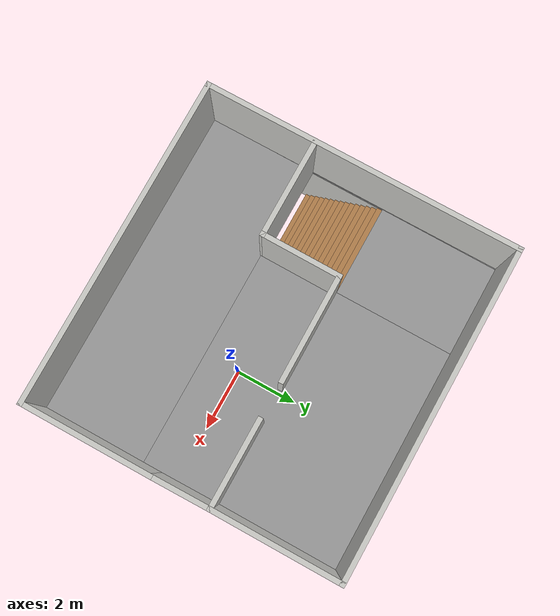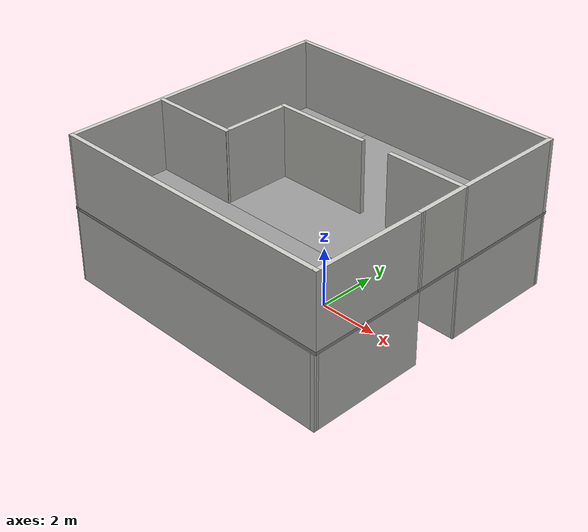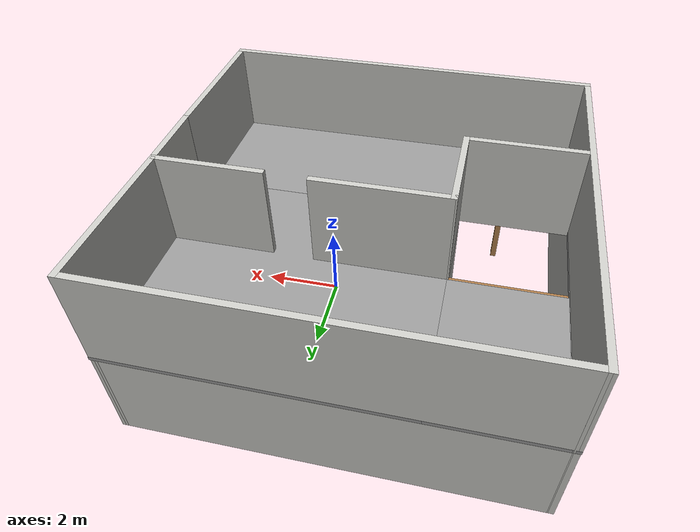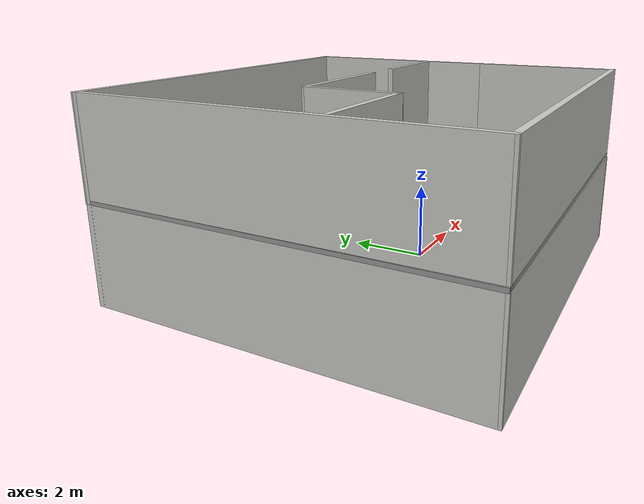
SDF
<?xml version='1.0'?>
<sdf version='1.6'>
  <model name='home_prote'>
    <pose frame=''>-1.18225 0.589115 0 0 -0 0</pose>
    <link name='Floor_1'>
      <pose frame=''>0 0.011385 2.5 0 -0 0</pose>
      <visual name='Floor_1_Visual_0'>
        <pose frame=''>-4.9287 0 0.05 0 -0 0</pose>
        <geometry>
          <box>
            <size>0.176275 9.61529 0.1</size>
          </box>
        </geometry>
        <material>
          <script>
            <uri>file://media/materials/scripts/gazebo.material</uri>
            <name>Gazebo/Grey</name>
          </script>
          <ambient>1 1 1 1</ambient>
        </material>
        <meta>
          <layer>1</layer>
        </meta>
      </visual>
      <collision name='Floor_1_Collision_0'>
        <geometry>
          <box>
            <size>0.176275 9.61529 0.1</size>
          </box>
        </geometry>
        <pose frame=''>-4.9287 0 0.05 0 -0 0</pose>
      </collision>
      <visual name='Floor_1_Visual_1'>
        <pose frame=''>0.088137 -3.14252 0.05 0 -0 0</pose>
        <geometry>
          <box>
            <size>9.85739 3.33026 0.1</size>
          </box>
        </geometry>
        <material>
          <script>
            <uri>file://media/materials/scripts/gazebo.material</uri>
            <name>Gazebo/Grey</name>
          </script>
          <ambient>1 1 1 1</ambient>
        </material>
        <meta>
          <layer>1</layer>
        </meta>
      </visual>
      <collision name='Floor_1_Collision_1'>
        <geometry>
          <box>
            <size>9.85739 3.33026 0.1</size>
          </box>
        </geometry>
        <pose frame=''>0.088137 -3.14252 0.05 0 -0 0</pose>
      </collision>
      <visual name='Floor_1_Visual_2'>
        <pose frame=''>1.49335 1.66513 0.05 0 -0 0</pose>
        <geometry>
          <box>
            <size>7.04695 6.28503 0.1</size>
          </box>
        </geometry>
        <material>
          <script>
            <uri>file://media/materials/scripts/gazebo.material</uri>
            <name>Gazebo/Grey</name>
          </script>
          <ambient>1 1 1 1</ambient>
        </material>
        <meta>
          <layer>1</layer>
        </meta>
      </visual>
      <collision name='Floor_1_Collision_2'>
        <geometry>
          <box>
            <size>7.04695 6.28503 0.1</size>
          </box>
        </geometry>
        <pose frame=''>1.49335 1.66513 0.05 0 -0 0</pose>
      </collision>
      <visual name='Floor_1_Visual_3'>
        <pose frame=''>-3.43534 2.88513 0.05 0 -0 0</pose>
        <geometry>
          <box>
            <size>2.81044 3.84504 0.1</size>
          </box>
        </geometry>
        <material>
          <script>
            <uri>file://media/materials/scripts/gazebo.material</uri>
            <name>Gazebo/Grey</name>
          </script>
          <ambient>1 1 1 1</ambient>
        </material>
        <meta>
          <layer>1</layer>
        </meta>
      </visual>
      <collision name='Floor_1_Collision_3'>
        <geometry>
          <box>
            <size>2.81044 3.84504 0.1</size>
          </box>
        </geometry>
        <pose frame=''>-3.43534 2.88513 0.05 0 -0 0</pose>
      </collision>
    </link>
    <link name='Stairs_1'>
      <visual name='Stairs_1_Visual_0'>
        <pose frame=''>-3.43534 -1.38467 0.083333 0 -0 -3.14159</pose>
        <geometry>
          <box>
            <size>2.81044 0.162667 0.166667</size>
          </box>
        </geometry>
        <material>
          <script>
            <uri>file://media/materials/scripts/gazebo.material</uri>
            <name>Gazebo/Wood</name>
          </script>
          <ambient>1 1 1 1</ambient>
        </material>
        <meta>
          <layer>0</layer>
        </meta>
      </visual>
      <collision name='Stairs_1_Collision_0'>
        <geometry>
          <box>
            <size>2.81044 0.162667 0.166667</size>
          </box>
        </geometry>
        <pose frame=''>-3.43534 -1.38467 0.083333 0 -0 -3.14159</pose>
      </collision>
      <visual name='Stairs_1_Visual_1'>
        <pose frame=''>-3.43534 -1.222 0.25 0 -0 -3.14159</pose>
        <geometry>
          <box>
            <size>2.81044 0.162667 0.166667</size>
          </box>
        </geometry>
        <material>
          <script>
            <uri>file://media/materials/scripts/gazebo.material</uri>
            <name>Gazebo/Wood</name>
          </script>
          <ambient>1 1 1 1</ambient>
        </material>
        <meta>
          <layer>0</layer>
        </meta>
      </visual>
      <collision name='Stairs_1_Collision_1'>
        <geometry>
          <box>
            <size>2.81044 0.162667 0.166667</size>
          </box>
        </geometry>
        <pose frame=''>-3.43534 -1.222 0.25 0 -0 -3.14159</pose>
      </collision>
      <visual name='Stairs_1_Visual_2'>
        <pose frame=''>-3.43534 -1.05934 0.416667 0 -0 -3.14159</pose>
        <geometry>
          <box>
            <size>2.81044 0.162667 0.166667</size>
          </box>
        </geometry>
        <material>
          <script>
            <uri>file://media/materials/scripts/gazebo.material</uri>
            <name>Gazebo/Wood</name>
          </script>
          <ambient>1 1 1 1</ambient>
        </material>
        <meta>
          <layer>0</layer>
        </meta>
      </visual>
      <collision name='Stairs_1_Collision_2'>
        <geometry>
          <box>
            <size>2.81044 0.162667 0.166667</size>
          </box>
        </geometry>
        <pose frame=''>-3.43534 -1.05934 0.416667 0 -0 -3.14159</pose>
      </collision>
      <visual name='Stairs_1_Visual_3'>
        <pose frame=''>-3.43534 -0.896671 0.583333 0 -0 -3.14159</pose>
        <geometry>
          <box>
            <size>2.81044 0.162667 0.166667</size>
          </box>
        </geometry>
        <material>
          <script>
            <uri>file://media/materials/scripts/gazebo.material</uri>
            <name>Gazebo/Wood</name>
          </script>
          <ambient>1 1 1 1</ambient>
        </material>
        <meta>
          <layer>0</layer>
        </meta>
      </visual>
      <collision name='Stairs_1_Collision_3'>
        <geometry>
          <box>
            <size>2.81044 0.162667 0.166667</size>
          </box>
        </geometry>
        <pose frame=''>-3.43534 -0.896671 0.583333 0 -0 -3.14159</pose>
      </collision>
      <visual name='Stairs_1_Visual_4'>
        <pose frame=''>-3.43534 -0.734004 0.75 0 -0 -3.14159</pose>
        <geometry>
          <box>
            <size>2.81044 0.162667 0.166667</size>
          </box>
        </geometry>
        <material>
          <script>
            <uri>file://media/materials/scripts/gazebo.material</uri>
            <name>Gazebo/Wood</name>
          </script>
          <ambient>1 1 1 1</ambient>
        </material>
        <meta>
          <layer>0</layer>
        </meta>
      </visual>
      <collision name='Stairs_1_Collision_4'>
        <geometry>
          <box>
            <size>2.81044 0.162667 0.166667</size>
          </box>
        </geometry>
        <pose frame=''>-3.43534 -0.734004 0.75 0 -0 -3.14159</pose>
      </collision>
      <visual name='Stairs_1_Visual_5'>
        <pose frame=''>-3.43534 -0.571338 0.916667 0 -0 -3.14159</pose>
        <geometry>
          <box>
            <size>2.81044 0.162667 0.166667</size>
          </box>
        </geometry>
        <material>
          <script>
            <uri>file://media/materials/scripts/gazebo.material</uri>
            <name>Gazebo/Wood</name>
          </script>
          <ambient>1 1 1 1</ambient>
        </material>
        <meta>
          <layer>0</layer>
        </meta>
      </visual>
      <collision name='Stairs_1_Collision_5'>
        <geometry>
          <box>
            <size>2.81044 0.162667 0.166667</size>
          </box>
        </geometry>
        <pose frame=''>-3.43534 -0.571338 0.916667 0 -0 -3.14159</pose>
      </collision>
      <visual name='Stairs_1_Visual_6'>
        <pose frame=''>-3.43534 -0.408671 1.08333 0 -0 -3.14159</pose>
        <geometry>
          <box>
            <size>2.81044 0.162667 0.166667</size>
          </box>
        </geometry>
        <material>
          <script>
            <uri>file://media/materials/scripts/gazebo.material</uri>
            <name>Gazebo/Wood</name>
          </script>
          <ambient>1 1 1 1</ambient>
        </material>
        <meta>
          <layer>0</layer>
        </meta>
      </visual>
      <collision name='Stairs_1_Collision_6'>
        <geometry>
          <box>
            <size>2.81044 0.162667 0.166667</size>
          </box>
        </geometry>
        <pose frame=''>-3.43534 -0.408671 1.08333 0 -0 -3.14159</pose>
      </collision>
      <visual name='Stairs_1_Visual_7'>
        <pose frame=''>-3.43534 -0.246004 1.25 0 -0 -3.14159</pose>
        <geometry>
          <box>
            <size>2.81044 0.162667 0.166667</size>
          </box>
        </geometry>
        <material>
          <script>
            <uri>file://media/materials/scripts/gazebo.material</uri>
            <name>Gazebo/Wood</name>
          </script>
          <ambient>1 1 1 1</ambient>
        </material>
        <meta>
          <layer>0</layer>
        </meta>
      </visual>
      <collision name='Stairs_1_Collision_7'>
        <geometry>
          <box>
            <size>2.81044 0.162667 0.166667</size>
          </box>
        </geometry>
        <pose frame=''>-3.43534 -0.246004 1.25 0 -0 -3.14159</pose>
      </collision>
      <visual name='Stairs_1_Visual_8'>
        <pose frame=''>-3.43534 -0.083338 1.41667 0 -0 -3.14159</pose>
        <geometry>
          <box>
            <size>2.81044 0.162667 0.166667</size>
          </box>
        </geometry>
        <material>
          <script>
            <uri>file://media/materials/scripts/gazebo.material</uri>
            <name>Gazebo/Wood</name>
          </script>
          <ambient>1 1 1 1</ambient>
        </material>
        <meta>
          <layer>0</layer>
        </meta>
      </visual>
      <collision name='Stairs_1_Collision_8'>
        <geometry>
          <box>
            <size>2.81044 0.162667 0.166667</size>
          </box>
        </geometry>
        <pose frame=''>-3.43534 -0.083338 1.41667 0 -0 -3.14159</pose>
      </collision>
      <visual name='Stairs_1_Visual_9'>
        <pose frame=''>-3.43534 0.079329 1.58333 0 -0 -3.14159</pose>
        <geometry>
          <box>
            <size>2.81044 0.162667 0.166667</size>
          </box>
        </geometry>
        <material>
          <script>
            <uri>file://media/materials/scripts/gazebo.material</uri>
            <name>Gazebo/Wood</name>
          </script>
          <ambient>1 1 1 1</ambient>
        </material>
        <meta>
          <layer>0</layer>
        </meta>
      </visual>
      <collision name='Stairs_1_Collision_9'>
        <geometry>
          <box>
            <size>2.81044 0.162667 0.166667</size>
          </box>
        </geometry>
        <pose frame=''>-3.43534 0.079329 1.58333 0 -0 -3.14159</pose>
      </collision>
      <visual name='Stairs_1_Visual_10'>
        <pose frame=''>-3.43534 0.241996 1.75 0 -0 -3.14159</pose>
        <geometry>
          <box>
            <size>2.81044 0.162667 0.166667</size>
          </box>
        </geometry>
        <material>
          <script>
            <uri>file://media/materials/scripts/gazebo.material</uri>
            <name>Gazebo/Wood</name>
          </script>
          <ambient>1 1 1 1</ambient>
        </material>
        <meta>
          <layer>0</layer>
        </meta>
      </visual>
      <collision name='Stairs_1_Collision_10'>
        <geometry>
          <box>
            <size>2.81044 0.162667 0.166667</size>
          </box>
        </geometry>
        <pose frame=''>-3.43534 0.241996 1.75 0 -0 -3.14159</pose>
      </collision>
      <visual name='Stairs_1_Visual_11'>
        <pose frame=''>-3.43534 0.404662 1.91667 0 -0 -3.14159</pose>
        <geometry>
          <box>
            <size>2.81044 0.162667 0.166667</size>
          </box>
        </geometry>
        <material>
          <script>
            <uri>file://media/materials/scripts/gazebo.material</uri>
            <name>Gazebo/Wood</name>
          </script>
          <ambient>1 1 1 1</ambient>
        </material>
        <meta>
          <layer>0</layer>
        </meta>
      </visual>
      <collision name='Stairs_1_Collision_11'>
        <geometry>
          <box>
            <size>2.81044 0.162667 0.166667</size>
          </box>
        </geometry>
        <pose frame=''>-3.43534 0.404662 1.91667 0 -0 -3.14159</pose>
      </collision>
      <visual name='Stairs_1_Visual_12'>
        <pose frame=''>-3.43534 0.567329 2.08333 0 -0 -3.14159</pose>
        <geometry>
          <box>
            <size>2.81044 0.162667 0.166667</size>
          </box>
        </geometry>
        <material>
          <script>
            <uri>file://media/materials/scripts/gazebo.material</uri>
            <name>Gazebo/Wood</name>
          </script>
          <ambient>1 1 1 1</ambient>
        </material>
        <meta>
          <layer>0</layer>
        </meta>
      </visual>
      <collision name='Stairs_1_Collision_12'>
        <geometry>
          <box>
            <size>2.81044 0.162667 0.166667</size>
          </box>
        </geometry>
        <pose frame=''>-3.43534 0.567329 2.08333 0 -0 -3.14159</pose>
      </collision>
      <visual name='Stairs_1_Visual_13'>
        <pose frame=''>-3.43534 0.729996 2.25 0 -0 -3.14159</pose>
        <geometry>
          <box>
            <size>2.81044 0.162667 0.166667</size>
          </box>
        </geometry>
        <material>
          <script>
            <uri>file://media/materials/scripts/gazebo.material</uri>
            <name>Gazebo/Wood</name>
          </script>
          <ambient>1 1 1 1</ambient>
        </material>
        <meta>
          <layer>0</layer>
        </meta>
      </visual>
      <collision name='Stairs_1_Collision_13'>
        <geometry>
          <box>
            <size>2.81044 0.162667 0.166667</size>
          </box>
        </geometry>
        <pose frame=''>-3.43534 0.729996 2.25 0 -0 -3.14159</pose>
      </collision>
      <visual name='Stairs_1_Visual_14'>
        <pose frame=''>-3.43534 0.892662 2.41667 0 -0 -3.14159</pose>
        <geometry>
          <box>
            <size>2.81044 0.162667 0.166667</size>
          </box>
        </geometry>
        <material>
          <script>
            <uri>file://media/materials/scripts/gazebo.material</uri>
            <name>Gazebo/Wood</name>
          </script>
          <ambient>1 1 1 1</ambient>
        </material>
        <meta>
          <layer>0</layer>
        </meta>
      </visual>
      <collision name='Stairs_1_Collision_14'>
        <geometry>
          <box>
            <size>2.81044 0.162667 0.166667</size>
          </box>
        </geometry>
        <pose frame=''>-3.43534 0.892662 2.41667 0 -0 -3.14159</pose>
      </collision>
    </link>
    <link name='Wall_12'>
      <collision name='Wall_12_Collision'>
        <geometry>
          <box>
            <size>9.96903 0.15 2.5</size>
          </box>
        </geometry>
        <pose frame=''>0 0 1.25 0 -0 0</pose>
      </collision>
      <visual name='Wall_12_Visual'>
        <pose frame=''>0 0 1.25 0 -0 0</pose>
        <geometry>
          <box>
            <size>9.96903 0.15 2.5</size>
          </box>
        </geometry>
        <material>
          <script>
            <uri>file://media/materials/scripts/gazebo.material</uri>
            <name>Gazebo/CeilingTiled</name>
          </script>
          <ambient>1 1 1 1</ambient>
        </material>
        <meta>
          <layer>0</layer>
        </meta>
      </visual>
      <pose frame=''>-0.00225 -4.73262 0 0 -0 3.13925</pose>
    </link>
    <link name='Wall_13'>
      <collision name='Wall_13_Collision'>
        <geometry>
          <box>
            <size>9.61486 0.15 2.5</size>
          </box>
        </geometry>
        <pose frame=''>0 0 1.25 0 -0 0</pose>
      </collision>
      <visual name='Wall_13_Visual'>
        <pose frame=''>0 0 1.25 0 -0 0</pose>
        <geometry>
          <box>
            <size>9.61486 0.15 2.5</size>
          </box>
        </geometry>
        <material>
          <script>
            <uri>file://media/materials/scripts/gazebo.material</uri>
            <name>Gazebo/CeilingTiled</name>
          </script>
          <ambient>1 1 1 1</ambient>
        </material>
        <meta>
          <layer>0</layer>
        </meta>
      </visual>
      <pose frame=''>-4.91925 0.011385 0 0 -0 1.57238</pose>
    </link>
    <link name='Wall_14'>
      <collision name='Wall_14_Collision'>
        <geometry>
          <box>
            <size>9.97677 0.15 2.5</size>
          </box>
        </geometry>
        <pose frame=''>0 0 1.25 0 -0 0</pose>
      </collision>
      <visual name='Wall_14_Visual'>
        <pose frame=''>0 0 1.25 0 -0 0</pose>
        <geometry>
          <box>
            <size>9.97677 0.15 2.5</size>
          </box>
        </geometry>
        <material>
          <script>
            <uri>file://media/materials/scripts/gazebo.material</uri>
            <name>Gazebo/CeilingTiled</name>
          </script>
          <ambient>1 1 1 1</ambient>
        </material>
        <meta>
          <layer>0</layer>
        </meta>
      </visual>
      <pose frame=''>-0.01325 4.74389 0 0 -0 0</pose>
    </link>
    <link name='Wall_15'>
      <collision name='Wall_15_Collision'>
        <geometry>
          <box>
            <size>4 0.15 2.5</size>
          </box>
        </geometry>
        <pose frame=''>0 0 1.25 0 -0 0</pose>
      </collision>
      <visual name='Wall_15_Visual'>
        <pose frame=''>0 0 1.25 0 -0 0</pose>
        <geometry>
          <box>
            <size>4 0.15 2.5</size>
          </box>
        </geometry>
        <material>
          <script>
            <uri>file://media/materials/scripts/gazebo.material</uri>
            <name>Gazebo/CeilingTiled</name>
          </script>
          <ambient>1 1 1 1</ambient>
        </material>
        <meta>
          <layer>0</layer>
        </meta>
      </visual>
      <pose frame=''>4.88875 2.81888 0 0 -0 -1.57677</pose>
    </link>
    <link name='Wall_17'>
      <collision name='Wall_17_Collision'>
        <geometry>
          <box>
            <size>4.00037 0.15 2.5</size>
          </box>
        </geometry>
        <pose frame=''>0 0 1.25 0 -0 0</pose>
      </collision>
      <visual name='Wall_17_Visual'>
        <pose frame=''>0 0 1.25 0 -0 0</pose>
        <geometry>
          <box>
            <size>4.00037 0.15 2.5</size>
          </box>
        </geometry>
        <material>
          <script>
            <uri>file://media/materials/scripts/gazebo.material</uri>
            <name>Gazebo/CeilingTiled</name>
          </script>
          <ambient>1 1 1 1</ambient>
        </material>
        <meta>
          <layer>0</layer>
        </meta>
      </visual>
      <pose frame=''>4.90725 -2.81912 0 0 -0 1.5708</pose>
    </link>
    <link name='Wall_19'>
      <collision name='Wall_19_Collision'>
        <geometry>
          <box>
            <size>2.46587 0.15 2.5</size>
          </box>
        </geometry>
        <pose frame=''>0 0 1.25 0 -0 0</pose>
      </collision>
      <visual name='Wall_19_Visual'>
        <pose frame=''>0 0 1.25 0 -0 0</pose>
        <geometry>
          <box>
            <size>2.46587 0.15 2.5</size>
          </box>
        </geometry>
        <material>
          <script>
            <uri>file://media/materials/scripts/gazebo.material</uri>
            <name>Gazebo/CeilingTiled</name>
          </script>
          <ambient>1 1 1 1</ambient>
        </material>
        <meta>
          <layer>0</layer>
        </meta>
      </visual>
      <pose frame=''>-2.00025 -0.257115 0 0 -0 1.57123</pose>
    </link>
    <link name='Wall_20'>
      <collision name='Wall_20_Collision'>
        <geometry>
          <box>
            <size>3 0.15 2.5</size>
          </box>
        </geometry>
        <pose frame=''>0 0 1.25 0 -0 0</pose>
      </collision>
      <visual name='Wall_20_Visual'>
        <pose frame=''>0 0 1.25 0 -0 0</pose>
        <geometry>
          <box>
            <size>3 0.15 2.5</size>
          </box>
        </geometry>
        <material>
          <script>
            <uri>file://media/materials/scripts/gazebo.material</uri>
            <name>Gazebo/CeilingTiled</name>
          </script>
          <ambient>1 1 1 1</ambient>
        </material>
        <meta>
          <layer>0</layer>
        </meta>
      </visual>
      <pose frame=''>-3.42575 0.894885 0 0 -0 -3.13738</pose>
    </link>
    <link name='Wall_23'>
      <collision name='Wall_23_Collision'>
        <geometry>
          <box>
            <size>0.25 0.15 2.5</size>
          </box>
        </geometry>
        <pose frame=''>0 0 1.25 0 -0 0</pose>
      </collision>
      <visual name='Wall_23_Visual'>
        <pose frame=''>0 0 1.25 0 -0 0</pose>
        <geometry>
          <box>
            <size>0.25 0.15 2.5</size>
          </box>
        </geometry>
        <material>
          <script>
            <uri>file://media/materials/scripts/gazebo.material</uri>
            <name>Gazebo/Wood</name>
          </script>
          <ambient>1 1 1 1</ambient>
        </material>
        <meta>
          <layer>0</layer>
        </meta>
      </visual>
      <pose frame=''>-3.17175 -3.01912 0 0 -0 -1.5708</pose>
    </link>
    <link name='Wall_26'>
      <collision name='Wall_26_Collision'>
        <geometry>
          <box>
            <size>0.3 0.15 2.5</size>
          </box>
        </geometry>
        <pose frame=''>0 0 1.25 0 -0 0</pose>
      </collision>
      <visual name='Wall_26_Visual'>
        <pose frame=''>0 0 1.25 0 -0 0</pose>
        <geometry>
          <box>
            <size>0.3 0.15 2.5</size>
          </box>
        </geometry>
        <material>
          <script>
            <uri>file://media/materials/scripts/gazebo.material</uri>
            <name>Gazebo/Wood</name>
          </script>
          <ambient>1 1 1 1</ambient>
        </material>
        <meta>
          <layer>0</layer>
        </meta>
      </visual>
      <pose frame=''>-1.64575 -3.72912 0 0 -0 1.5708</pose>
    </link>
    <link name='Wall_28'>
      <collision name='Wall_28_Collision'>
        <geometry>
          <box>
            <size>0.25 0.15 2.5</size>
          </box>
        </geometry>
        <pose frame=''>0 0 1.25 0 -0 0</pose>
      </collision>
      <visual name='Wall_28_Visual'>
        <pose frame=''>0 0 1.25 0 -0 0</pose>
        <geometry>
          <box>
            <size>0.25 0.15 2.5</size>
          </box>
        </geometry>
        <material>
          <script>
            <uri>file://media/materials/scripts/gazebo.material</uri>
            <name>Gazebo/Wood</name>
          </script>
          <ambient>1 1 1 1</ambient>
        </material>
        <meta>
          <layer>0</layer>
        </meta>
      </visual>
      <pose frame=''>-0.59675 -2.35512 0 0 -0 -1.5708</pose>
    </link>
    <link name='Wall_30'>
      <collision name='Wall_30_Collision'>
        <geometry>
          <box>
            <size>0.25 0.15 2.5</size>
          </box>
        </geometry>
        <pose frame=''>0 0 1.25 0 -0 0</pose>
      </collision>
      <visual name='Wall_30_Visual'>
        <pose frame=''>0 0 1.25 0 -0 0</pose>
        <geometry>
          <box>
            <size>0.25 0.15 2.5</size>
          </box>
        </geometry>
        <material>
          <script>
            <uri>file://media/materials/scripts/gazebo.material</uri>
            <name>Gazebo/Wood</name>
          </script>
          <ambient>1 1 1 1</ambient>
        </material>
        <meta>
          <layer>0</layer>
        </meta>
      </visual>
      <pose frame=''>0.74225 -3.01912 0 0 -0 -1.5708</pose>
    </link>
    <link name='Wall_33'>
      <collision name='Wall_33_Collision'>
        <geometry>
          <box>
            <size>0.25 0.15 2.5</size>
          </box>
        </geometry>
        <pose frame=''>0 0 1.25 0 -0 0</pose>
      </collision>
      <visual name='Wall_33_Visual'>
        <pose frame=''>0 0 1.25 0 -0 0</pose>
        <geometry>
          <box>
            <size>0.25 0.15 2.5</size>
          </box>
        </geometry>
        <material>
          <script>
            <uri>file://media/materials/scripts/gazebo.material</uri>
            <name>Gazebo/Wood</name>
          </script>
          <ambient>1 1 1 1</ambient>
        </material>
        <meta>
          <layer>0</layer>
        </meta>
      </visual>
      <pose frame=''>3.07725 -3.73511 0 0 -0 -1.5708</pose>
    </link>
    <link name='Wall_36'>
      <collision name='Wall_36_Collision'>
        <geometry>
          <box>
            <size>0.25 0.15 2.5</size>
          </box>
        </geometry>
        <pose frame=''>0 0 1.25 0 -0 0</pose>
      </collision>
      <visual name='Wall_36_Visual'>
        <pose frame=''>0 0 1.25 0 -0 0</pose>
        <geometry>
          <box>
            <size>0.25 0.15 2.5</size>
          </box>
        </geometry>
        <material>
          <script>
            <uri>file://media/materials/scripts/gazebo.material</uri>
            <name>Gazebo/Wood</name>
          </script>
          <ambient>1 1 1 1</ambient>
        </material>
        <meta>
          <layer>0</layer>
        </meta>
      </visual>
      <pose frame=''>2.37425 -1.70511 0 0 -0 -1.5708</pose>
    </link>
    <link name='Wall_39'>
      <collision name='Wall_39_Collision'>
        <geometry>
          <box>
            <size>3.31636 0.15 2.5</size>
          </box>
        </geometry>
        <pose frame=''>0 0 1.25 0 -0 0</pose>
      </collision>
      <visual name='Wall_39_Visual'>
        <pose frame=''>0 0 1.25 0 -0 0</pose>
        <geometry>
          <box>
            <size>3.31636 0.15 2.5</size>
          </box>
        </geometry>
        <material>
          <script>
            <uri>file://media/materials/scripts/gazebo.material</uri>
            <name>Gazebo/CeilingTiled</name>
          </script>
          <ambient>1 1 1 1</ambient>
        </material>
        <meta>
          <layer>0</layer>
        </meta>
      </visual>
      <pose frame=''>-0.41775 0.907385 0 0 -0 0.004106</pose>
    </link>
    <link name='Wall_41'>
      <collision name='Wall_41_Collision'>
        <geometry>
          <box>
            <size>2.70371 0.15 2.5</size>
          </box>
        </geometry>
        <pose frame=''>0 0 1.25 0 -0 0</pose>
      </collision>
      <visual name='Wall_41_Visual'>
        <pose frame=''>0 0 1.25 0 -0 0</pose>
        <geometry>
          <box>
            <size>2.70371 0.15 2.5</size>
          </box>
        </geometry>
        <material>
          <script>
            <uri>file://media/materials/scripts/gazebo.material</uri>
            <name>Gazebo/CeilingTiled</name>
          </script>
          <ambient>1 1 1 1</ambient>
        </material>
        <meta>
          <layer>0</layer>
        </meta>
      </visual>
      <pose frame=''>3.60025 0.893885 0 0 -0 3.14159</pose>
    </link>
    <link name='Wall_62'>
      <collision name='Wall_62_Collision'>
        <geometry>
          <box>
            <size>10 0.15 2.5</size>
          </box>
        </geometry>
        <pose frame=''>0 0 1.25 0 -0 0</pose>
      </collision>
      <visual name='Wall_62_Visual'>
        <pose frame=''>0 0 1.25 0 -0 0</pose>
        <geometry>
          <box>
            <size>10 0.15 2.5</size>
          </box>
        </geometry>
        <material>
          <script>
            <uri>file://media/materials/scripts/gazebo.material</uri>
            <name>Gazebo/CeilingTiled</name>
          </script>
          <ambient>1 1 1 1</ambient>
        </material>
        <meta>
          <layer>1</layer>
        </meta>
      </visual>
      <pose frame=''>0.01625 -4.72112 2.5 0 -0 3.14159</pose>
    </link>
    <link name='Wall_63'>
      <collision name='Wall_63_Collision'>
        <geometry>
          <box>
            <size>9.61506 0.15 2.5</size>
          </box>
        </geometry>
        <pose frame=''>0 0 1.25 0 -0 0</pose>
      </collision>
      <visual name='Wall_63_Visual'>
        <pose frame=''>0 0 1.25 0 -0 0</pose>
        <geometry>
          <box>
            <size>9.61506 0.15 2.5</size>
          </box>
        </geometry>
        <material>
          <script>
            <uri>file://media/materials/scripts/gazebo.material</uri>
            <name>Gazebo/CeilingTiled</name>
          </script>
          <ambient>1 1 1 1</ambient>
        </material>
        <meta>
          <layer>1</layer>
        </meta>
      </visual>
      <pose frame=''>-4.92525 0.011385 2.5 0 -0 1.57428</pose>
    </link>
    <link name='Wall_64'>
      <collision name='Wall_64_Collision'>
        <geometry>
          <box>
            <size>10.0152 0.15 2.5</size>
          </box>
        </geometry>
        <pose frame=''>0 0 1.25 0 -0 0</pose>
      </collision>
      <visual name='Wall_64_Visual'>
        <pose frame=''>0 0 1.25 0 -0 0</pose>
        <geometry>
          <box>
            <size>10.0152 0.15 2.5</size>
          </box>
        </geometry>
        <material>
          <script>
            <uri>file://media/materials/scripts/gazebo.material</uri>
            <name>Gazebo/CeilingTiled</name>
          </script>
          <ambient>1 1 1 1</ambient>
        </material>
        <meta>
          <layer>1</layer>
        </meta>
      </visual>
      <pose frame=''>-0.00925 4.74389 2.5 0 -0 0</pose>
    </link>
    <link name='Wall_65'>
      <collision name='Wall_65_Collision'>
        <geometry>
          <box>
            <size>4 0.15 2.5</size>
          </box>
        </geometry>
        <pose frame=''>0 0 1.25 0 -0 0</pose>
      </collision>
      <visual name='Wall_65_Visual'>
        <pose frame=''>0 0 1.25 0 -0 0</pose>
        <geometry>
          <box>
            <size>4 0.15 2.5</size>
          </box>
        </geometry>
        <material>
          <script>
            <uri>file://media/materials/scripts/gazebo.material</uri>
            <name>Gazebo/CeilingTiled</name>
          </script>
          <ambient>1 1 1 1</ambient>
        </material>
        <meta>
          <layer>1</layer>
        </meta>
      </visual>
      <pose frame=''>4.92325 2.81888 2.5 0 -0 -1.5708</pose>
    </link>
    <link name='Wall_66'>
      <collision name='Wall_66_Collision'>
        <geometry>
          <box>
            <size>4 0.15 2.5</size>
          </box>
        </geometry>
        <pose frame=''>0 0 1.25 0 -0 0</pose>
      </collision>
      <visual name='Wall_66_Visual'>
        <pose frame=''>0 0 1.25 0 -0 0</pose>
        <geometry>
          <box>
            <size>4 0.15 2.5</size>
          </box>
        </geometry>
        <material>
          <script>
            <uri>file://media/materials/scripts/gazebo.material</uri>
            <name>Gazebo/CeilingTiled</name>
          </script>
          <ambient>1 1 1 1</ambient>
        </material>
        <meta>
          <layer>1</layer>
        </meta>
      </visual>
      <pose frame=''>4.94125 -2.79611 2.5 0 -0 1.5708</pose>
    </link>
    <link name='Wall_67'>
      <collision name='Wall_67_Collision'>
        <geometry>
          <box>
            <size>2.46548 0.15 2.5</size>
          </box>
        </geometry>
        <pose frame=''>0 0 1.25 0 -0 0</pose>
      </collision>
      <visual name='Wall_67_Visual'>
        <pose frame=''>0 0 1.25 0 -0 0</pose>
        <geometry>
          <box>
            <size>2.46548 0.15 2.5</size>
          </box>
        </geometry>
        <material>
          <script>
            <uri>file://media/materials/scripts/gazebo.material</uri>
            <name>Gazebo/CeilingTiled</name>
          </script>
          <ambient>1 1 1 1</ambient>
        </material>
        <meta>
          <layer>1</layer>
        </meta>
      </visual>
      <pose frame=''>-1.99475 -0.257115 2.5 0 -0 1.56648</pose>
    </link>
    <link name='Wall_75'>
      <collision name='Wall_75_Collision'>
        <geometry>
          <box>
            <size>3.30476 0.15 2.5</size>
          </box>
        </geometry>
        <pose frame=''>0 0 1.25 0 -0 0</pose>
      </collision>
      <visual name='Wall_75_Visual'>
        <pose frame=''>0 0 1.25 0 -0 0</pose>
        <geometry>
          <box>
            <size>3.30476 0.15 2.5</size>
          </box>
        </geometry>
        <material>
          <script>
            <uri>file://media/materials/scripts/gazebo.material</uri>
            <name>Gazebo/CeilingTiled</name>
          </script>
          <ambient>1 1 1 1</ambient>
        </material>
        <meta>
          <layer>1</layer>
        </meta>
      </visual>
      <pose frame=''>-0.41225 0.907385 2.5 0 -0 0.00412</pose>
    </link>
    <link name='Wall_76'>
      <collision name='Wall_76_Collision'>
        <geometry>
          <box>
            <size>2.75 0.15 2.5</size>
          </box>
        </geometry>
        <pose frame=''>0 0 1.25 0 -0 0</pose>
      </collision>
      <visual name='Wall_76_Visual'>
        <pose frame=''>0 0 1.25 0 -0 0</pose>
        <geometry>
          <box>
            <size>2.75 0.15 2.5</size>
          </box>
        </geometry>
        <material>
          <script>
            <uri>file://media/materials/scripts/gazebo.material</uri>
            <name>Gazebo/CeilingTiled</name>
          </script>
          <ambient>1 1 1 1</ambient>
        </material>
        <meta>
          <layer>1</layer>
        </meta>
      </visual>
      <pose frame=''>3.62325 0.893885 2.5 0 -0 3.14159</pose>
    </link>
    <link name='Wall_77'>
      <collision name='Wall_77_Collision'>
        <geometry>
          <box>
            <size>3 0.15 2.5</size>
          </box>
        </geometry>
        <pose frame=''>0 0 1.25 0 -0 0</pose>
      </collision>
      <visual name='Wall_77_Visual'>
        <pose frame=''>0 0 1.25 0 -0 0</pose>
        <geometry>
          <box>
            <size>3 0.15 2.5</size>
          </box>
        </geometry>
        <material>
          <script>
            <uri>file://media/materials/scripts/gazebo.material</uri>
            <name>Gazebo/CeilingTiled</name>
          </script>
          <ambient>1 1 1 1</ambient>
        </material>
        <meta>
          <layer>1</layer>
        </meta>
      </visual>
      <pose frame=''>-3.42475 -1.41511 2.5 0 -0 3.14159</pose>
    </link>
    <link name='Wall_79'>
      <collision name='Wall_79_Collision'>
        <geometry>
          <box>
            <size>1.91509 0.15 2.5</size>
          </box>
        </geometry>
        <pose frame=''>0 0 1.25 0 -0 0</pose>
      </collision>
      <visual name='Wall_79_Visual'>
        <pose frame=''>0 0 1.25 0 -0 0</pose>
        <geometry>
          <box>
            <size>1.91509 0.15 2.5</size>
          </box>
        </geometry>
        <material>
          <script>
            <uri>file://media/materials/scripts/gazebo.material</uri>
            <name>Gazebo/CeilingTiled</name>
          </script>
          <ambient>1 1 1 1</ambient>
        </material>
        <meta>
          <layer>1</layer>
        </meta>
      </visual>
      <pose frame=''>4.93225 0.011385 2.5 0 -0 -1.5606</pose>
    </link>
    <static>1</static>
  </model>
</sdf>
